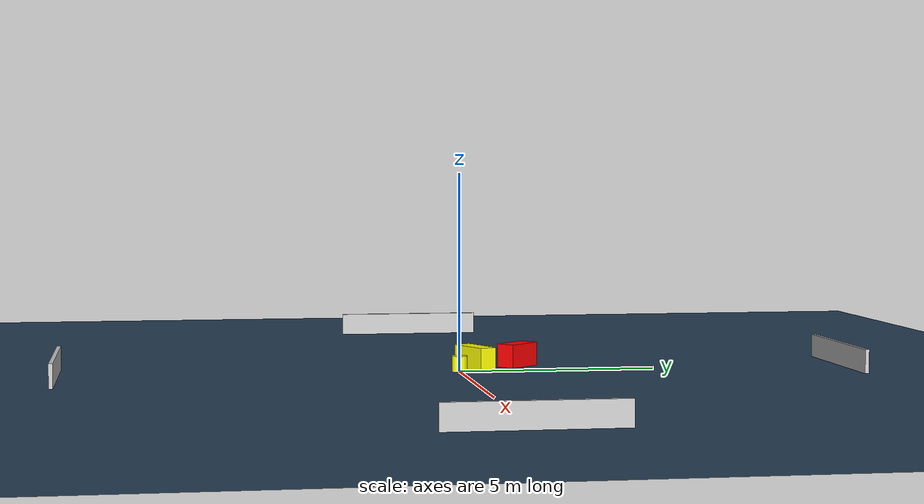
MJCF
<?xml version="1.0" ?>
<mujoco model="generated_environment">
  <option timestep="0.01" integrator="RK4" cone="elliptic"/>
  <default>
    <geom density="1"/>
  </default>
  <asset>
    <texture builtin="gradient" height="3072" name="skybox" rgb1="0.3 0.5 0.7" rgb2="0 0 0" type="skybox" width="512"/>
    <texture builtin="checker" height="300" name="groundplane" rgb1="0.2 0.3 0.4" rgb2="0.1 0.2 0.3" type="2d" width="300"/>
    <material name="groundplane" reflectance="0.2" texrepeat="5 5" texture="groundplane"/>
  </asset>
  <worldbody>
    <light dir="0 0 -1" directional="true" pos="0 0 1.5"/>
    <geom condim="3" friction="0.5 0.005 0.001" material="groundplane" name="floor" pos="0 0 0" size="0 0 0.05" type="plane"/>
    <body name="walls">
      <geom name="wall_1" condim="4" pos="-10.0 0.0 0.3" rgba="0.800000011920929 0.800000011920929 0.800000011920929 1.0" size="0.05 2.0 0.3" type="box"/>
      <geom name="wall_2" condim="4" pos="10.0 0.0 0.3" rgba="0.800000011920929 0.800000011920929 0.800000011920929 1.0" size="0.05 2.0 0.3" type="box"/>
      <geom name="wall_3" condim="4" pos="0.0 -10.0 0.3" rgba="0.800000011920929 0.800000011920929 0.800000011920929 1.0" size="2.0 0.05 0.3" type="box"/>
      <geom name="wall_4" condim="4" pos="0.0 10.0 0.3" rgba="0.800000011920929 0.800000011920929 0.800000011920929 1.0" size="2.0 0.05 0.3" type="box"/>
    </body>
    <body name="robot">
      <joint name="joint_x" type="slide" pos="0 0 0" axis="1 0 0"/>
      <joint name="joint_y" type="slide" pos="0 0 0" axis="0 1 0"/>
      <geom name="robot" type="cylinder" pos="0.0 0.0 0.2" size="0.2 0.2 0.0" mass="5.0" friction="1.0 0.005 0.0001" condim="4" rgba="1.0 1.0 0.0 1.0"/>
    </body>
    <body name="obstacle_1_movable">
      <geom name="obstacle_1_movable" condim="4" pos="-0.41043160730826445 0.4618831474910314 0.3" euler="0 0 115.1056715875977" friction="0.0 0.005 0.001" rgba="1.0 1.0 0.0 1.0" size="0.22320954807835522 0.594962210157649 0.3" type="box" mass="0.1"/>
      <joint type="free"/>
    </body>
    <body name="obstacle_2_static">
      <geom name="obstacle_2_static" condim="4" pos="-0.9729865865515105 1.659874403238474 0.3" euler="0 0 311.9100845147452" friction="0.0 0.005 0.001" rgba="1.0 0.0 0.0 1.0" size="0.5123334004593497 0.25202038838183516 0.3" type="box"/>
    </body>
  </worldbody>
  <actuator>
    <motor name="actuator_x" joint="joint_x" gear="1" ctrlrange="-1 1"/>
    <motor name="actuator_y" joint="joint_y" gear="1" ctrlrange="-1 1"/>
  </actuator>
</mujoco>
